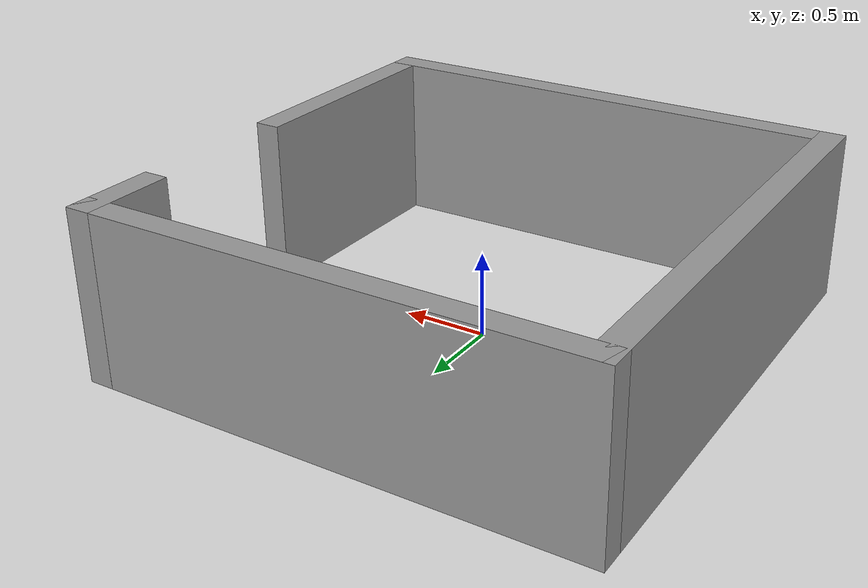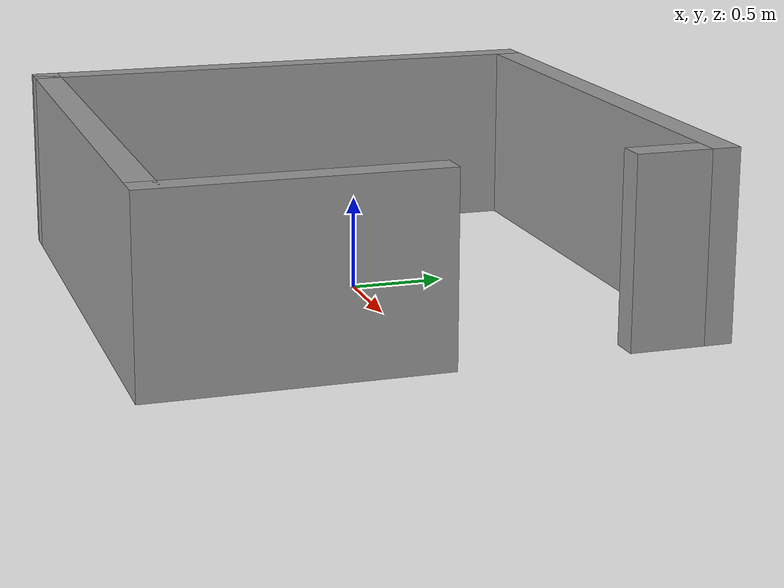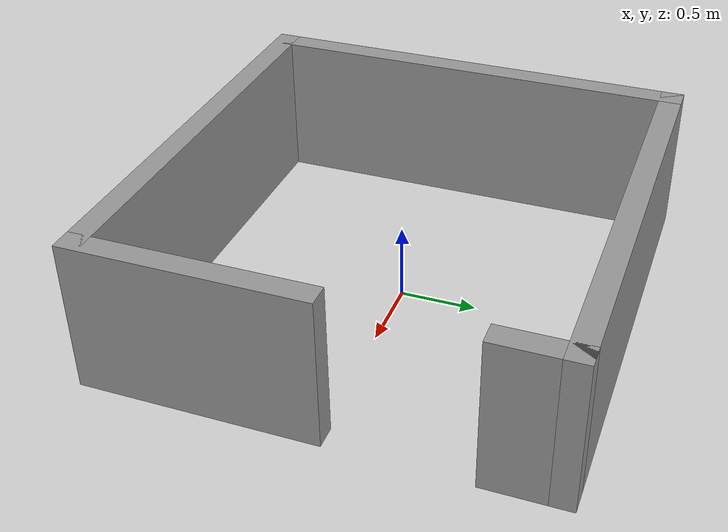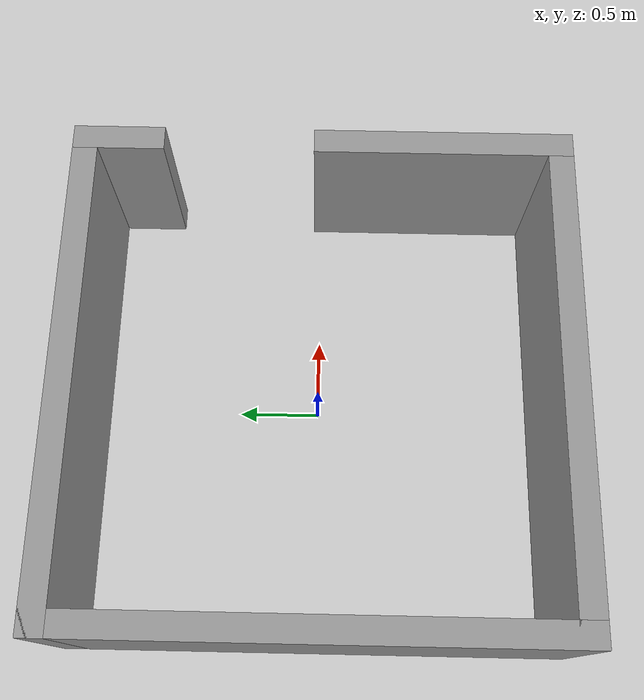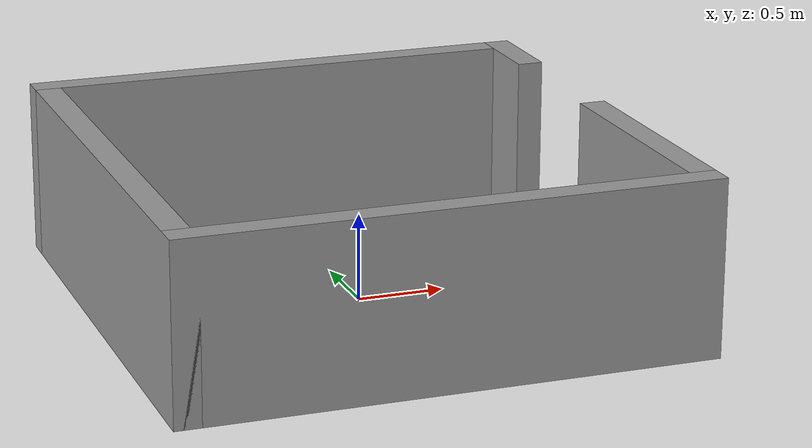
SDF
<?xml version='1.0'?>
<sdf version='1.6'>
  <model name='aulagazebo_planta'>
    <link name='Wall_22'>
      <collision name='Wall_22_Collision'>
        <geometry>
          <box>
            <size>3 0.15 1</size>
          </box>
        </geometry>
        <pose frame=''>0 0 0.5 0 -0 0</pose>
      </collision>
      <visual name='Wall_22_Visual'>
        <pose frame=''>0 0 0.5 0 -0 0</pose>
        <geometry>
          <box>
            <size>3 0.15 1</size>
          </box>
        </geometry>
        <material>
          <script>
            <uri>file://media/materials/scripts/gazebo.material</uri>
            <name>Gazebo/Grey</name>
          </script>
          <ambient>1 1 1 1</ambient>
        </material>
      </visual>
      <pose frame=''>0 -1.425 0 0 -0 0</pose>
    </link>
    <link name='Wall_23'>
      <pose frame=''>1.425 0 0 0 -0 1.5708</pose>
      <visual name='Wall_23_Visual_0'>
        <pose frame=''>-0.724238 0 0.5 0 -0 0</pose>
        <geometry>
          <box>
            <size>1.55152 0.15 1</size>
          </box>
        </geometry>
        <material>
          <script>
            <uri>file://media/materials/scripts/gazebo.material</uri>
            <name>Gazebo/Grey</name>
          </script>
          <ambient>1 1 1 1</ambient>
        </material>
      </visual>
      <collision name='Wall_23_Collision_0'>
        <geometry>
          <box>
            <size>1.55152 0.15 1</size>
          </box>
        </geometry>
        <pose frame=''>-0.724238 0 0.5 0 -0 0</pose>
      </collision>
      <visual name='Wall_23_Visual_1'>
        <pose frame=''>1.22576 0 0.5 0 -0 0</pose>
        <geometry>
          <box>
            <size>0.548477 0.15 1</size>
          </box>
        </geometry>
        <material>
          <script>
            <uri>file://media/materials/scripts/gazebo.material</uri>
            <name>Gazebo/Grey</name>
          </script>
          <ambient>1 1 1 1</ambient>
        </material>
      </visual>
      <collision name='Wall_23_Collision_1'>
        <geometry>
          <box>
            <size>0.548477 0.15 1</size>
          </box>
        </geometry>
        <pose frame=''>1.22576 0 0.5 0 -0 0</pose>
      </collision>
    </link>
    <link name='Wall_24'>
      <collision name='Wall_24_Collision'>
        <geometry>
          <box>
            <size>3 0.15 1</size>
          </box>
        </geometry>
        <pose frame=''>0 0 0.5 0 -0 0</pose>
      </collision>
      <visual name='Wall_24_Visual'>
        <pose frame=''>0 0 0.5 0 -0 0</pose>
        <geometry>
          <box>
            <size>3 0.15 1</size>
          </box>
        </geometry>
        <material>
          <script>
            <uri>file://media/materials/scripts/gazebo.material</uri>
            <name>Gazebo/Grey</name>
          </script>
          <ambient>1 1 1 1</ambient>
        </material>
      </visual>
      <pose frame=''>0 1.425 0 0 -0 3.14159</pose>
    </link>
    <link name='Wall_25'>
      <collision name='Wall_25_Collision'>
        <geometry>
          <box>
            <size>3 0.15 1</size>
          </box>
        </geometry>
        <pose frame=''>0 0 0.5 0 -0 0</pose>
      </collision>
      <visual name='Wall_25_Visual'>
        <pose frame=''>0 0 0.5 0 -0 0</pose>
        <geometry>
          <box>
            <size>3 0.15 1</size>
          </box>
        </geometry>
        <material>
          <script>
            <uri>file://media/materials/scripts/gazebo.material</uri>
            <name>Gazebo/Grey</name>
          </script>
          <ambient>1 1 1 1</ambient>
        </material>
      </visual>
      <pose frame=''>-1.425 0 0 0 0 -1.5708</pose>
    </link>
    <static>1</static>
  </model>
</sdf>
